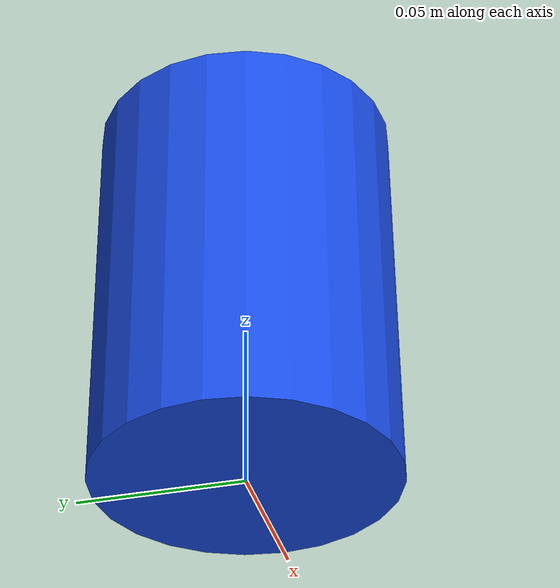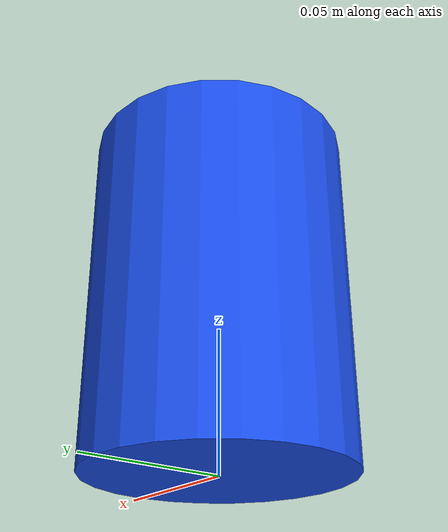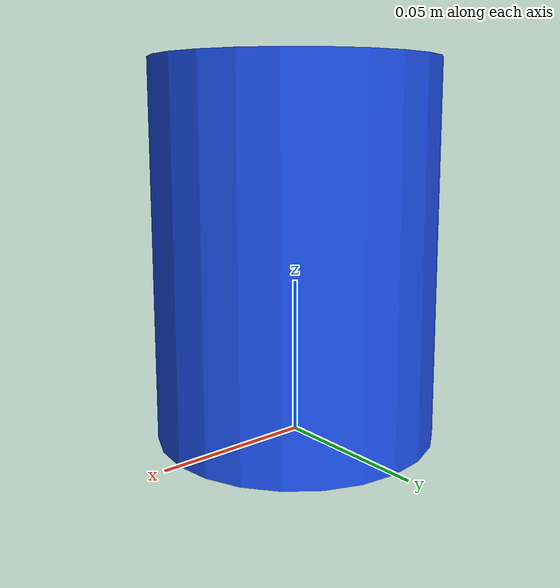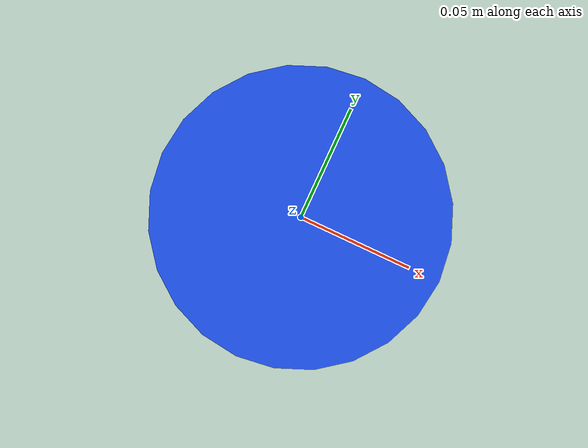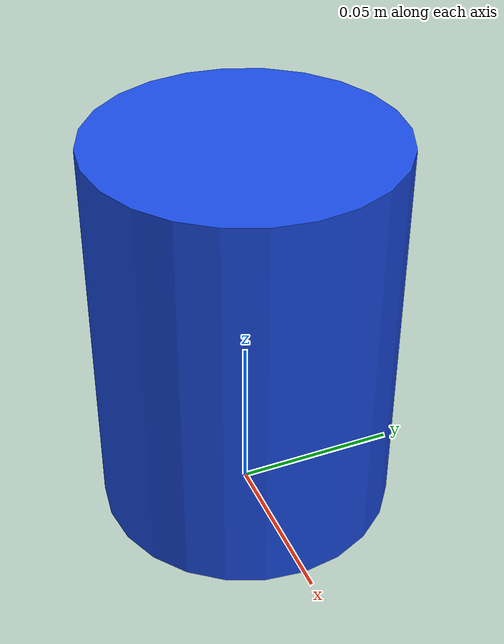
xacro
<?xml version="1.0"?>
<robot xmlns:xacro="http://www.ros.org/wiki/xacro">

  <!-- Bottle parameters -->
  <xacro:property name="bottle_radius" value="0.045"/>
  <xacro:property name="bottle_length" value="0.12"/>
  <xacro:property name="bottle_mass" value="0.3"/>

  <!-- Bottle link -->
  <link name="bottle_link">
    <visual>
      <origin xyz="0 0 ${bottle_length/2}" rpy="0 0 0"/>
      <geometry>
        <cylinder radius="${bottle_radius}" length="${bottle_length}"/>
      </geometry>
      <material name="blue">
        <color rgba="0.1 0.3 0.9 1.0"/>
      </material>
    </visual>

    <collision>
      <origin xyz="0 0 ${bottle_length/2}" rpy="0 0 0"/>
      <geometry>
        <cylinder radius="${bottle_radius}" length="${bottle_length}"/>
      </geometry>
    </collision>

    <inertial>
      <origin xyz="0 0 ${bottle_length/2}" rpy="0 0 0"/>
      <mass value="${bottle_mass}"/>
      <inertia
        ixx="0.002" ixy="0" ixz="0"
        iyy="0.002" iyz="0"
        izz="0.001"/>
    </inertial>
  </link>

</robot>
